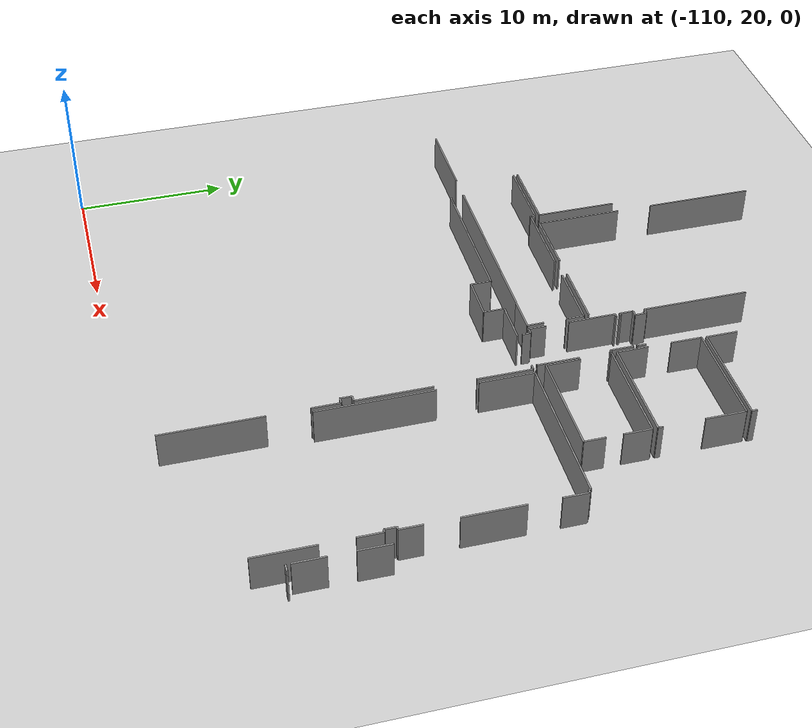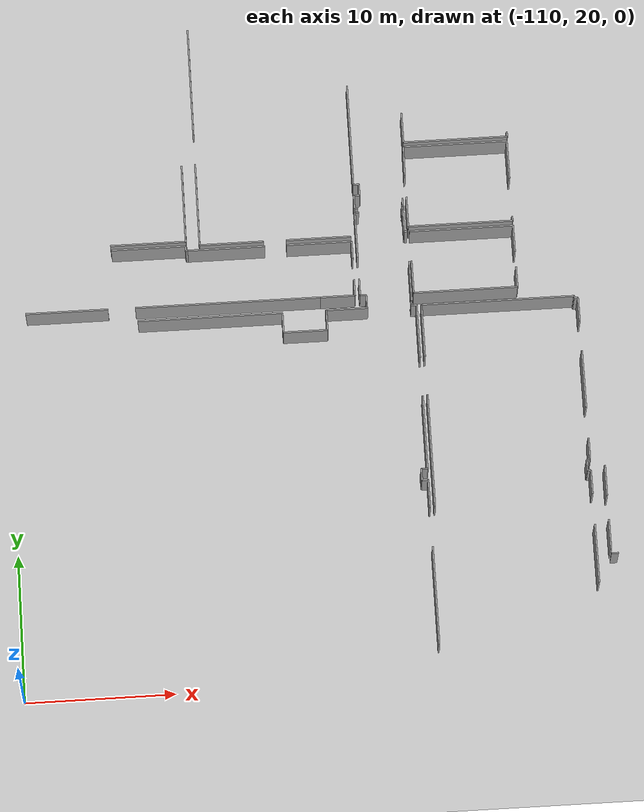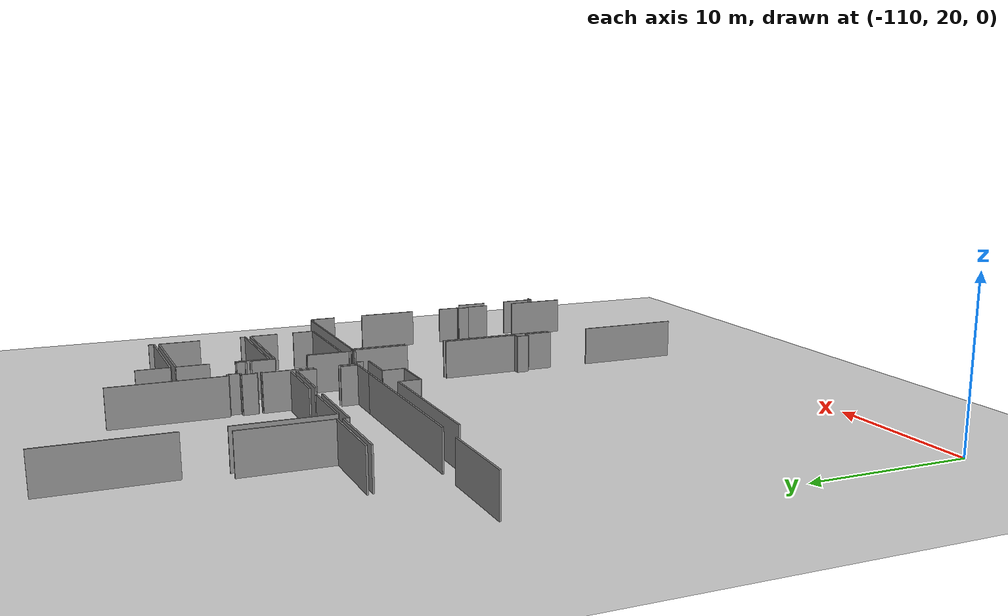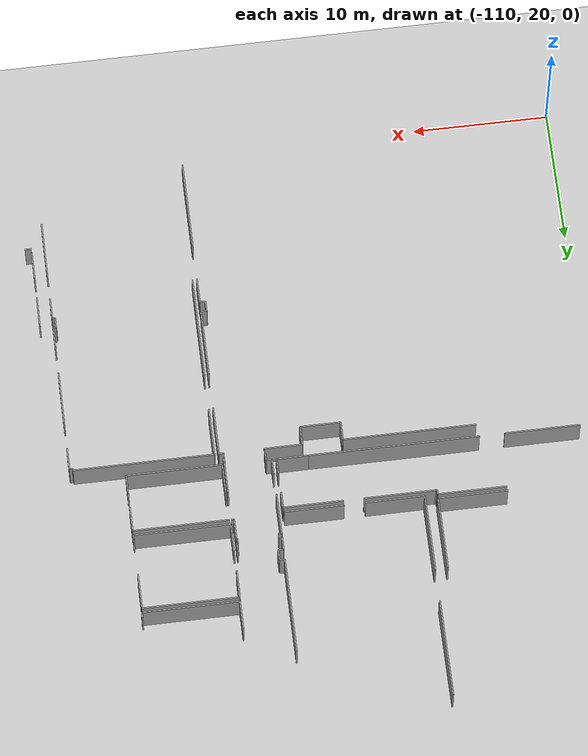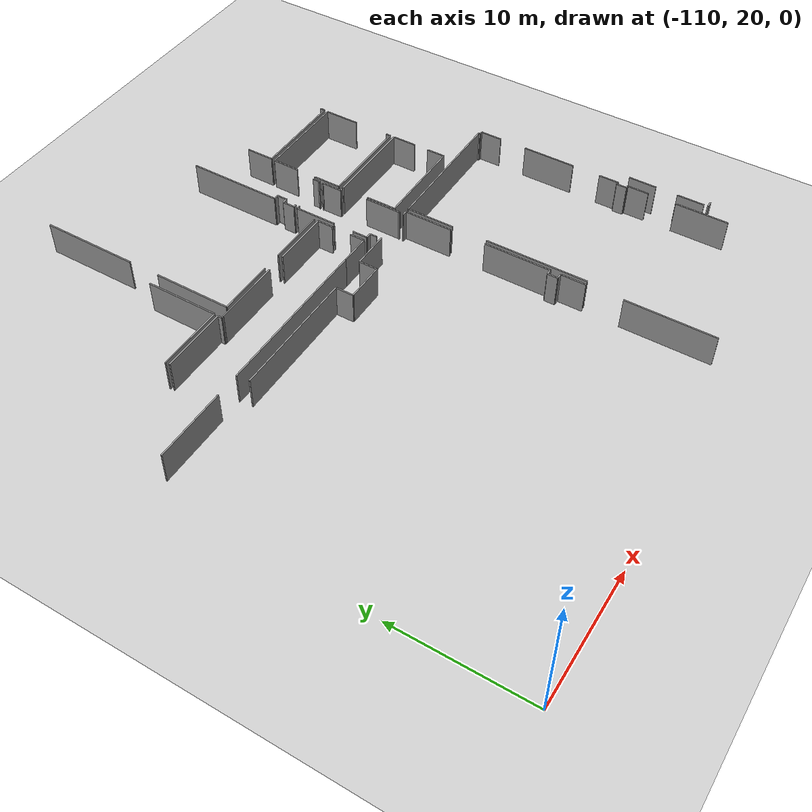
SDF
<sdf version="1.6">
 <world name="default">
  <model name="ground_plane">
   <static>1</static>
   <link name="link">
    <collision name="collision">
     <geometry><plane><normal>0 0 1</normal><size>100 100</size></plane></geometry>
     <surface><friction><ode><mu>100</mu><mu2>50</mu2></ode></friction></surface>
    </collision>
    <visual name="visual">
     <cast_shadows>0</cast_shadows>
     <geometry><plane><normal>0 0 1</normal><size>100 100</size></plane></geometry>
     <material>
      <script><uri>file://media/materials/scripts/gazebo.material</uri><name>Gazebo/Grey</name></script>
     </material>
    </visual>
   </link>
  </model>
  <model name="0510045926_A-40">
   <static>1</static>
   <link name="Wall_679">
    <collision name="Wall_679_Collision">
     <geometry><box><size>5.3736760945 0.1 2.5</size></box></geometry>
     <pose>2.68683804725 0 1.25 0 0 0</pose>
    </collision>
    <visual name="Wall_679_Visual">
     <pose>2.68683804725 0 1.25 0 0 0</pose>
     <geometry><box><size>5.3736760945 0.1 2.5</size></box></geometry>
     <material>
      <script><uri>file://media/materials/scripts/gazebo.material</uri><name>Gazebo/Grey</name></script>
      <ambient>1 1 1 1</ambient>
     </material>
    </visual>
    <pose>36.2260142274 -45.2300565416 0 0 0 -1.57079632679</pose>
   </link>
   <link name="Wall_680">
    <collision name="Wall_680_Collision">
     <geometry><box><size>5.06805937189 0.1 2.5</size></box></geometry>
     <pose>2.53402968594 0 1.25 0 0 0</pose>
    </collision>
    <visual name="Wall_680_Visual">
     <pose>2.53402968594 0 1.25 0 0 0</pose>
     <geometry><box><size>5.06805937189 0.1 2.5</size></box></geometry>
     <material>
      <script><uri>file://media/materials/scripts/gazebo.material</uri><name>Gazebo/Grey</name></script>
      <ambient>1 1 1 1</ambient>
     </material>
    </visual>
    <pose>36.2260142274 -50.6037326361 0 0 0 3.14159265359</pose>
   </link>
   <link name="Wall_689">
    <collision name="Wall_689_Collision">
     <geometry><box><size>5.73209039046 0.1 2.5</size></box></geometry>
     <pose>2.86604519523 0 1.25 0 0 0</pose>
    </collision>
    <visual name="Wall_689_Visual">
     <pose>2.86604519523 0 1.25 0 0 0</pose>
     <geometry><box><size>5.73209039046 0.1 2.5</size></box></geometry>
     <material>
      <script><uri>file://media/materials/scripts/gazebo.material</uri><name>Gazebo/Grey</name></script>
      <ambient>1 1 1 1</ambient>
     </material>
    </visual>
    <pose>37.1433720642 -50.9024958276 0 0 0 1.57079632679</pose>
   </link>
   <link name="Wall_690">
    <collision name="Wall_690_Collision">
     <geometry><box><size>7.20103056802 0.1 2.5</size></box></geometry>
     <pose>3.60051528401 0 1.25 0 0 0</pose>
    </collision>
    <visual name="Wall_690_Visual">
     <pose>3.60051528401 0 1.25 0 0 0</pose>
     <geometry><box><size>7.20103056802 0.1 2.5</size></box></geometry>
     <material>
      <script><uri>file://media/materials/scripts/gazebo.material</uri><name>Gazebo/Grey</name></script>
      <ambient>1 1 1 1</ambient>
     </material>
    </visual>
    <pose>37.1433720642 -42.7724310363 0 0 0 1.57079632679</pose>
   </link>
   <link name="Wall_696">
    <collision name="Wall_696_Collision">
     <geometry><box><size>4.36696851818 0.1 2.5</size></box></geometry>
     <pose>2.18348425909 0 1.25 0 0 0</pose>
    </collision>
    <visual name="Wall_696_Visual">
     <pose>2.18348425909 0 1.25 0 0 0</pose>
     <geometry><box><size>4.36696851818 0.1 2.5</size></box></geometry>
     <material>
      <script><uri>file://media/materials/scripts/gazebo.material</uri><name>Gazebo/Grey</name></script>
      <ambient>1 1 1 1</ambient>
     </material>
    </visual>
    <pose>47.3259425192 -50.8933577861 0 0 0 3.14159265359</pose>
   </link>
   <link name="Wall_697">
    <collision name="Wall_697_Collision">
     <geometry><box><size>4.30047359121 0.1 2.5</size></box></geometry>
     <pose>2.15023679561 0 1.25 0 0 0</pose>
    </collision>
    <visual name="Wall_697_Visual">
     <pose>2.15023679561 0 1.25 0 0 0</pose>
     <geometry><box><size>4.30047359121 0.1 2.5</size></box></geometry>
     <material>
      <script><uri>file://media/materials/scripts/gazebo.material</uri><name>Gazebo/Grey</name></script>
      <ambient>1 1 1 1</ambient>
     </material>
    </visual>
    <pose>41.4438359468 -50.8933577861 0 0 0 -3.13946776008</pose>
   </link>
   <link name="Wall_715">
    <collision name="Wall_715_Collision">
     <geometry><box><size>9.69343139806 0.1 2.5</size></box></geometry>
     <pose>4.84671569903 0 1.25 0 0 0</pose>
    </collision>
    <visual name="Wall_715_Visual">
     <pose>4.84671569903 0 1.25 0 0 0</pose>
     <geometry><box><size>9.69343139806 0.1 2.5</size></box></geometry>
     <material>
      <script><uri>file://media/materials/scripts/gazebo.material</uri><name>Gazebo/Grey</name></script>
      <ambient>1 1 1 1</ambient>
     </material>
    </visual>
    <pose>32.7324901798 -55.9758857237 0 0 0 0.0</pose>
   </link>
   <link name="Wall_716">
    <collision name="Wall_716_Collision">
     <geometry><box><size>1.36461420331 0.1 2.5</size></box></geometry>
     <pose>0.682307101654 0 1.25 0 0 0</pose>
    </collision>
    <visual name="Wall_716_Visual">
     <pose>0.682307101654 0 1.25 0 0 0</pose>
     <geometry><box><size>1.36461420331 0.1 2.5</size></box></geometry>
     <material>
      <script><uri>file://media/materials/scripts/gazebo.material</uri><name>Gazebo/Grey</name></script>
      <ambient>1 1 1 1</ambient>
     </material>
    </visual>
    <pose>42.4259215778 -55.9758857237 0 0 0 -1.57079632679</pose>
   </link>
   <link name="Wall_717">
    <collision name="Wall_717_Collision">
     <geometry><box><size>2.94244937588 0.1 2.5</size></box></geometry>
     <pose>1.47122468794 0 1.25 0 0 0</pose>
    </collision>
    <visual name="Wall_717_Visual">
     <pose>1.47122468794 0 1.25 0 0 0</pose>
     <geometry><box><size>2.94244937588 0.1 2.5</size></box></geometry>
     <material>
      <script><uri>file://media/materials/scripts/gazebo.material</uri><name>Gazebo/Grey</name></script>
      <ambient>1 1 1 1</ambient>
     </material>
    </visual>
    <pose>42.4259215778 -57.340499927 0 0 0 0.0</pose>
   </link>
   <link name="Wall_718">
    <collision name="Wall_718_Collision">
     <geometry><box><size>1.38974381754 0.1 2.5</size></box></geometry>
     <pose>0.694871908772 0 1.25 0 0 0</pose>
    </collision>
    <visual name="Wall_718_Visual">
     <pose>0.694871908772 0 1.25 0 0 0</pose>
     <geometry><box><size>1.38974381754 0.1 2.5</size></box></geometry>
     <material>
      <script><uri>file://media/materials/scripts/gazebo.material</uri><name>Gazebo/Grey</name></script>
      <ambient>1 1 1 1</ambient>
     </material>
    </visual>
    <pose>45.3683709537 -57.340499927 0 0 0 1.57079632679</pose>
   </link>
   <link name="Wall_719">
    <collision name="Wall_719_Collision">
     <geometry><box><size>2.79573304227 0.1 2.5</size></box></geometry>
     <pose>1.39786652113 0 1.25 0 0 0</pose>
    </collision>
    <visual name="Wall_719_Visual">
     <pose>1.39786652113 0 1.25 0 0 0</pose>
     <geometry><box><size>2.79573304227 0.1 2.5</size></box></geometry>
     <material>
      <script><uri>file://media/materials/scripts/gazebo.material</uri><name>Gazebo/Grey</name></script>
      <ambient>1 1 1 1</ambient>
     </material>
    </visual>
    <pose>45.3683709537 -55.9507561095 0 0 0 0.0</pose>
   </link>
   <link name="Wall_720">
    <collision name="Wall_720_Collision">
     <geometry><box><size>0.377198048013 0.1 2.5</size></box></geometry>
     <pose>0.188599024006 0 1.25 0 0 0</pose>
    </collision>
    <visual name="Wall_720_Visual">
     <pose>0.188599024006 0 1.25 0 0 0</pose>
     <geometry><box><size>0.377198048013 0.1 2.5</size></box></geometry>
     <material>
      <script><uri>file://media/materials/scripts/gazebo.material</uri><name>Gazebo/Grey</name></script>
      <ambient>1 1 1 1</ambient>
     </material>
    </visual>
    <pose>51.0504559502 -55.9507561095 0 0 0 0.0</pose>
   </link>
   <link name="Wall_721">
    <collision name="Wall_721_Collision">
     <geometry><box><size>3.64201722267 0.1 2.5</size></box></geometry>
     <pose>1.82100861133 0 1.25 0 0 0</pose>
    </collision>
    <visual name="Wall_721_Visual">
     <pose>1.82100861133 0 1.25 0 0 0</pose>
     <geometry><box><size>3.64201722267 0.1 2.5</size></box></geometry>
     <material>
      <script><uri>file://media/materials/scripts/gazebo.material</uri><name>Gazebo/Grey</name></script>
      <ambient>1 1 1 1</ambient>
     </material>
    </visual>
    <pose>51.4276539982 -55.9507561095 0 0 0 -1.57079632679</pose>
   </link>
   <link name="Wall_722">
    <collision name="Wall_722_Collision">
     <geometry><box><size>5.02617668149 0.1 2.5</size></box></geometry>
     <pose>2.51308834075 0 1.25 0 0 0</pose>
    </collision>
    <visual name="Wall_722_Visual">
     <pose>2.51308834075 0 1.25 0 0 0</pose>
     <geometry><box><size>5.02617668149 0.1 2.5</size></box></geometry>
     <material>
      <script><uri>file://media/materials/scripts/gazebo.material</uri><name>Gazebo/Grey</name></script>
      <ambient>1 1 1 1</ambient>
     </material>
    </visual>
    <pose>51.4276539982 -62.2897647589 0 0 0 -1.57079632679</pose>
   </link>
   <link name="Wall_723">
    <collision name="Wall_723_Collision">
     <geometry><box><size>0.419588407379 0.1 2.5</size></box></geometry>
     <pose>0.209794203689 0 1.25 0 0 0</pose>
    </collision>
    <visual name="Wall_723_Visual">
     <pose>0.209794203689 0 1.25 0 0 0</pose>
     <geometry><box><size>0.419588407379 0.1 2.5</size></box></geometry>
     <material>
      <script><uri>file://media/materials/scripts/gazebo.material</uri><name>Gazebo/Grey</name></script>
      <ambient>1 1 1 1</ambient>
     </material>
    </visual>
    <pose>51.4276539982 -67.3159414404 0 0 0 3.14159265359</pose>
   </link>
   <link name="Wall_724">
    <collision name="Wall_724_Collision">
     <geometry><box><size>0.769118496284 0.1 2.5</size></box></geometry>
     <pose>0.384559248142 0 1.25 0 0 0</pose>
    </collision>
    <visual name="Wall_724_Visual">
     <pose>0.384559248142 0 1.25 0 0 0</pose>
     <geometry><box><size>0.769118496284 0.1 2.5</size></box></geometry>
     <material>
      <script><uri>file://media/materials/scripts/gazebo.material</uri><name>Gazebo/Grey</name></script>
      <ambient>1 1 1 1</ambient>
     </material>
    </visual>
    <pose>51.0080655908 -67.3159414404 0 0 0 -1.57079632679</pose>
   </link>
   <link name="Wall_725">
    <collision name="Wall_725_Collision">
     <geometry><box><size>0.414765552122 0.1 2.5</size></box></geometry>
     <pose>0.207382776061 0 1.25 0 0 0</pose>
    </collision>
    <visual name="Wall_725_Visual">
     <pose>0.207382776061 0 1.25 0 0 0</pose>
     <geometry><box><size>0.414765552122 0.1 2.5</size></box></geometry>
     <material>
      <script><uri>file://media/materials/scripts/gazebo.material</uri><name>Gazebo/Grey</name></script>
      <ambient>1 1 1 1</ambient>
     </material>
    </visual>
    <pose>51.0080655908 -68.0850599367 0 0 0 0.0</pose>
   </link>
   <link name="Wall_726">
    <collision name="Wall_726_Collision">
     <geometry><box><size>1.88421339865 0.1 2.5</size></box></geometry>
     <pose>0.942106699327 0 1.25 0 0 0</pose>
    </collision>
    <visual name="Wall_726_Visual">
     <pose>0.942106699327 0 1.25 0 0 0</pose>
     <geometry><box><size>1.88421339865 0.1 2.5</size></box></geometry>
     <material>
      <script><uri>file://media/materials/scripts/gazebo.material</uri><name>Gazebo/Grey</name></script>
      <ambient>1 1 1 1</ambient>
     </material>
    </visual>
    <pose>51.422831143 -68.0850599367 0 0 0 -1.57079632679</pose>
   </link>
   <link name="Wall_727">
    <collision name="Wall_727_Collision">
     <geometry><box><size>6.62660312343 0.1 2.5</size></box></geometry>
     <pose>3.31330156172 0 1.25 0 0 0</pose>
    </collision>
    <visual name="Wall_727_Visual">
     <pose>3.31330156172 0 1.25 0 0 0</pose>
     <geometry><box><size>6.62660312343 0.1 2.5</size></box></geometry>
     <material>
      <script><uri>file://media/materials/scripts/gazebo.material</uri><name>Gazebo/Grey</name></script>
      <ambient>1 1 1 1</ambient>
     </material>
    </visual>
    <pose>51.422831143 -72.6896175349 0 0 0 -1.57079632679</pose>
   </link>
   <link name="Wall_737">
    <collision name="Wall_737_Collision">
     <geometry><box><size>5.18558473947 0.1 2.5</size></box></geometry>
     <pose>2.59279236974 0 1.25 0 0 0</pose>
    </collision>
    <visual name="Wall_737_Visual">
     <pose>2.59279236974 0 1.25 0 0 0</pose>
     <geometry><box><size>5.18558473947 0.1 2.5</size></box></geometry>
     <material>
      <script><uri>file://media/materials/scripts/gazebo.material</uri><name>Gazebo/Grey</name></script>
      <ambient>1 1 1 1</ambient>
     </material>
    </visual>
    <pose>36.333132381 -51.2322268265 0 0 0 0.0</pose>
   </link>
   <link name="Wall_738">
    <collision name="Wall_738_Collision">
     <geometry><box><size>4.35884581459 0.1 2.5</size></box></geometry>
     <pose>2.17942290729 0 1.25 0 0 0</pose>
    </collision>
    <visual name="Wall_738_Visual">
     <pose>2.17942290729 0 1.25 0 0 0</pose>
     <geometry><box><size>4.35884581459 0.1 2.5</size></box></geometry>
     <material>
      <script><uri>file://media/materials/scripts/gazebo.material</uri><name>Gazebo/Grey</name></script>
      <ambient>1 1 1 1</ambient>
     </material>
    </visual>
    <pose>42.9884188015 -51.2322268265 0 0 0 0.0</pose>
   </link>
   <link name="Wall_739">
    <collision name="Wall_739_Collision">
     <geometry><box><size>1.19860644867 0.1 2.5</size></box></geometry>
     <pose>0.599303224333 0 1.25 0 0 0</pose>
    </collision>
    <visual name="Wall_739_Visual">
     <pose>0.599303224333 0 1.25 0 0 0</pose>
     <geometry><box><size>1.19860644867 0.1 2.5</size></box></geometry>
     <material>
      <script><uri>file://media/materials/scripts/gazebo.material</uri><name>Gazebo/Grey</name></script>
      <ambient>1 1 1 1</ambient>
     </material>
    </visual>
    <pose>47.3472646161 -51.2322268265 0 0 0 -1.57079632679</pose>
   </link>
   <link name="Wall_740">
    <collision name="Wall_740_Collision">
     <geometry><box><size>1.10747986775 0.1 2.5</size></box></geometry>
     <pose>0.553739933876 0 1.25 0 0 0</pose>
    </collision>
    <visual name="Wall_740_Visual">
     <pose>0.553739933876 0 1.25 0 0 0</pose>
     <geometry><box><size>1.10747986775 0.1 2.5</size></box></geometry>
     <material>
      <script><uri>file://media/materials/scripts/gazebo.material</uri><name>Gazebo/Grey</name></script>
      <ambient>1 1 1 1</ambient>
     </material>
    </visual>
    <pose>47.3472646161 -53.9322642671 0 0 0 -1.57079632679</pose>
   </link>
   <link name="Wall_741">
    <collision name="Wall_741_Collision">
     <geometry><box><size>2.32969292373 0.1 2.5</size></box></geometry>
     <pose>1.16484646186 0 1.25 0 0 0</pose>
    </collision>
    <visual name="Wall_741_Visual">
     <pose>1.16484646186 0 1.25 0 0 0</pose>
     <geometry><box><size>2.32969292373 0.1 2.5</size></box></geometry>
     <material>
      <script><uri>file://media/materials/scripts/gazebo.material</uri><name>Gazebo/Grey</name></script>
      <ambient>1 1 1 1</ambient>
     </material>
    </visual>
    <pose>47.3472646161 -55.0397441348 0 0 0 3.14159265359</pose>
   </link>
   <link name="Wall_742">
    <collision name="Wall_742_Collision">
     <geometry><box><size>12.4051452251 0.1 2.5</size></box></geometry>
     <pose>6.20257261253 0 1.25 0 0 0</pose>
    </collision>
    <visual name="Wall_742_Visual">
     <pose>6.20257261253 0 1.25 0 0 0</pose>
     <geometry><box><size>12.4051452251 0.1 2.5</size></box></geometry>
     <material>
      <script><uri>file://media/materials/scripts/gazebo.material</uri><name>Gazebo/Grey</name></script>
      <ambient>1 1 1 1</ambient>
     </material>
    </visual>
    <pose>45.0175716924 -55.0397441348 0 0 0 3.14159265359</pose>
   </link>
   <link name="Wall_743">
    <collision name="Wall_743_Collision">
     <geometry><box><size>5.51810791773 0.1 2.5</size></box></geometry>
     <pose>2.75905395887 0 1.25 0 0 0</pose>
    </collision>
    <visual name="Wall_743_Visual">
     <pose>2.75905395887 0 1.25 0 0 0</pose>
     <geometry><box><size>5.51810791773 0.1 2.5</size></box></geometry>
     <material>
      <script><uri>file://media/materials/scripts/gazebo.material</uri><name>Gazebo/Grey</name></script>
      <ambient>1 1 1 1</ambient>
     </material>
    </visual>
    <pose>30.7825336489 -55.0397441348 0 0 0 3.14159265359</pose>
   </link>
   <link name="Wall_761">
    <collision name="Wall_761_Collision">
     <geometry><box><size>4.99597037752 0.1 2.5</size></box></geometry>
     <pose>2.49798518876 0 1.25 0 0 0</pose>
    </collision>
    <visual name="Wall_761_Visual">
     <pose>2.49798518876 0 1.25 0 0 0</pose>
     <geometry><box><size>4.99597037752 0.1 2.5</size></box></geometry>
     <material>
      <script><uri>file://media/materials/scripts/gazebo.material</uri><name>Gazebo/Grey</name></script>
      <ambient>1 1 1 1</ambient>
     </material>
    </visual>
    <pose>31.2023758908 -50.9096031932 0 0 0 0.0</pose>
   </link>
   <link name="Wall_762">
    <collision name="Wall_762_Collision">
     <geometry><box><size>0.32262363326 0.1 2.5</size></box></geometry>
     <pose>0.16131181663 0 1.25 0 0 0</pose>
    </collision>
    <visual name="Wall_762_Visual">
     <pose>0.16131181663 0 1.25 0 0 0</pose>
     <geometry><box><size>0.32262363326 0.1 2.5</size></box></geometry>
     <material>
      <script><uri>file://media/materials/scripts/gazebo.material</uri><name>Gazebo/Grey</name></script>
      <ambient>1 1 1 1</ambient>
     </material>
    </visual>
    <pose>36.1983462683 -50.9096031932 0 0 0 -1.57079632679</pose>
   </link>
   <link name="Wall_763">
    <collision name="Wall_763_Collision">
     <geometry><box><size>0.134786112715 0.1 2.5</size></box></geometry>
     <pose>0.0673930563576 0 1.25 0 0 0</pose>
    </collision>
    <visual name="Wall_763_Visual">
     <pose>0.0673930563576 0 1.25 0 0 0</pose>
     <geometry><box><size>0.134786112715 0.1 2.5</size></box></geometry>
     <material>
      <script><uri>file://media/materials/scripts/gazebo.material</uri><name>Gazebo/Grey</name></script>
      <ambient>1 1 1 1</ambient>
     </material>
    </visual>
    <pose>36.1983462683 -51.2322268265 0 0 0 0.0</pose>
   </link>
   <link name="Wall_808">
    <collision name="Wall_808_Collision">
     <geometry><box><size>1.14047835109 0.1 2.5</size></box></geometry>
     <pose>0.570239175546 0 1.25 0 0 0</pose>
    </collision>
    <visual name="Wall_808_Visual">
     <pose>0.570239175546 0 1.25 0 0 0</pose>
     <geometry><box><size>1.14047835109 0.1 2.5</size></box></geometry>
     <material>
      <script><uri>file://media/materials/scripts/gazebo.material</uri><name>Gazebo/Grey</name></script>
      <ambient>1 1 1 1</ambient>
     </material>
    </visual>
    <pose>47.6909565118 -55.0453284936 0 0 0 1.57079632679</pose>
   </link>
   <link name="Wall_809">
    <collision name="Wall_809_Collision">
     <geometry><box><size>3.13257140681 0.1 2.5</size></box></geometry>
     <pose>1.56628570341 0 1.25 0 0 0</pose>
    </collision>
    <visual name="Wall_809_Visual">
     <pose>1.56628570341 0 1.25 0 0 0</pose>
     <geometry><box><size>3.13257140681 0.1 2.5</size></box></geometry>
     <material>
      <script><uri>file://media/materials/scripts/gazebo.material</uri><name>Gazebo/Grey</name></script>
      <ambient>1 1 1 1</ambient>
     </material>
    </visual>
    <pose>47.6909565118 -52.3633133016 0 0 0 1.57079632679</pose>
   </link>
   <link name="Wall_810">
    <collision name="Wall_810_Collision">
     <geometry><box><size>0.268556887482 0.1 2.5</size></box></geometry>
     <pose>0.134278443741 0 1.25 0 0 0</pose>
    </collision>
    <visual name="Wall_810_Visual">
     <pose>0.134278443741 0 1.25 0 0 0</pose>
     <geometry><box><size>0.268556887482 0.1 2.5</size></box></geometry>
     <material>
      <script><uri>file://media/materials/scripts/gazebo.material</uri><name>Gazebo/Grey</name></script>
      <ambient>1 1 1 1</ambient>
     </material>
    </visual>
    <pose>47.6909565118 -49.2307418947 0 0 0 0.0</pose>
   </link>
   <link name="Wall_811">
    <collision name="Wall_811_Collision">
     <geometry><box><size>0.107118153608 0.1 2.5</size></box></geometry>
     <pose>0.053559076804 0 1.25 0 0 0</pose>
    </collision>
    <visual name="Wall_811_Visual">
     <pose>0.053559076804 0 1.25 0 0 0</pose>
     <geometry><box><size>0.107118153608 0.1 2.5</size></box></geometry>
     <material>
      <script><uri>file://media/materials/scripts/gazebo.material</uri><name>Gazebo/Grey</name></script>
      <ambient>1 1 1 1</ambient>
     </material>
    </visual>
    <pose>50.835711974 -49.2307418947 0 0 0 0.0</pose>
   </link>
   <link name="Wall_812">
    <collision name="Wall_812_Collision">
     <geometry><box><size>1.51996090949 0.1 2.5</size></box></geometry>
     <pose>0.759980454744 0 1.25 0 0 0</pose>
    </collision>
    <visual name="Wall_812_Visual">
     <pose>0.759980454744 0 1.25 0 0 0</pose>
     <geometry><box><size>1.51996090949 0.1 2.5</size></box></geometry>
     <material>
      <script><uri>file://media/materials/scripts/gazebo.material</uri><name>Gazebo/Grey</name></script>
      <ambient>1 1 1 1</ambient>
     </material>
    </visual>
    <pose>50.9428301276 -49.2307418947 0 0 0 -1.57079632679</pose>
   </link>
   <link name="Wall_813">
    <collision name="Wall_813_Collision">
     <geometry><box><size>0.187076017083 0.1 2.5</size></box></geometry>
     <pose>0.0935380085415 0 1.25 0 0 0</pose>
    </collision>
    <visual name="Wall_813_Visual">
     <pose>0.0935380085415 0 1.25 0 0 0</pose>
     <geometry><box><size>0.187076017083 0.1 2.5</size></box></geometry>
     <material>
      <script><uri>file://media/materials/scripts/gazebo.material</uri><name>Gazebo/Grey</name></script>
      <ambient>1 1 1 1</ambient>
     </material>
    </visual>
    <pose>50.9428301276 -50.7507028042 0 0 0 0.0</pose>
   </link>
   <link name="Wall_814">
    <collision name="Wall_814_Collision">
     <geometry><box><size>2.75410418637 0.1 2.5</size></box></geometry>
     <pose>1.37705209318 0 1.25 0 0 0</pose>
    </collision>
    <visual name="Wall_814_Visual">
     <pose>1.37705209318 0 1.25 0 0 0</pose>
     <geometry><box><size>2.75410418637 0.1 2.5</size></box></geometry>
     <material>
      <script><uri>file://media/materials/scripts/gazebo.material</uri><name>Gazebo/Grey</name></script>
      <ambient>1 1 1 1</ambient>
     </material>
    </visual>
    <pose>51.1299061447 -52.8476295032 0 0 0 -1.57079632679</pose>
   </link>
   <link name="Wall_815">
    <collision name="Wall_815_Collision">
     <geometry><box><size>0.0890959050151 0.1 2.5</size></box></geometry>
     <pose>0.0445479525076 0 1.25 0 0 0</pose>
    </collision>
    <visual name="Wall_815_Visual">
     <pose>0.0445479525076 0 1.25 0 0 0</pose>
     <geometry><box><size>0.0890959050151 0.1 2.5</size></box></geometry>
     <material>
      <script><uri>file://media/materials/scripts/gazebo.material</uri><name>Gazebo/Grey</name></script>
      <ambient>1 1 1 1</ambient>
     </material>
    </visual>
    <pose>51.1299061447 -55.6017336895 0 0 0 3.14159265359</pose>
   </link>
   <link name="Wall_816">
    <collision name="Wall_816_Collision">
     <geometry><box><size>0.548028657914 0.1 2.5</size></box></geometry>
     <pose>0.274014328957 0 1.25 0 0 0</pose>
    </collision>
    <visual name="Wall_816_Visual">
     <pose>0.274014328957 0 1.25 0 0 0</pose>
     <geometry><box><size>0.548028657914 0.1 2.5</size></box></geometry>
     <material>
      <script><uri>file://media/materials/scripts/gazebo.material</uri><name>Gazebo/Grey</name></script>
      <ambient>1 1 1 1</ambient>
     </material>
    </visual>
    <pose>48.1077527398 -55.6017336895 0 0 0 1.57079632679</pose>
   </link>
   <link name="Wall_817">
    <collision name="Wall_817_Collision">
     <geometry><box><size>0.416880393016 0.1 2.5</size></box></geometry>
     <pose>0.208440196508 0 1.25 0 0 0</pose>
    </collision>
    <visual name="Wall_817_Visual">
     <pose>0.208440196508 0 1.25 0 0 0</pose>
     <geometry><box><size>0.416880393016 0.1 2.5</size></box></geometry>
     <material>
      <script><uri>file://media/materials/scripts/gazebo.material</uri><name>Gazebo/Grey</name></script>
      <ambient>1 1 1 1</ambient>
     </material>
    </visual>
    <pose>48.1077527398 -55.0537050316 0 0 0 3.12149791662</pose>
   </link>
   <link name="Wall_818">
    <collision name="Wall_818_Collision">
     <geometry><box><size>2.25481175 0.1 2.5</size></box></geometry>
     <pose>1.127405875 0 1.25 0 0 0</pose>
    </collision>
    <visual name="Wall_818_Visual">
     <pose>1.127405875 0 1.25 0 0 0</pose>
     <geometry><box><size>2.25481175 0.1 2.5</size></box></geometry>
     <material>
      <script><uri>file://media/materials/scripts/gazebo.material</uri><name>Gazebo/Grey</name></script>
      <ambient>1 1 1 1</ambient>
     </material>
    </visual>
    <pose>51.2783993197 -55.0864496805 0 0 0 1.57079632679</pose>
   </link>
   <link name="Wall_819">
    <collision name="Wall_819_Collision">
     <geometry><box><size>6.97308719849 0.1 2.5</size></box></geometry>
     <pose>3.48654359925 0 1.25 0 0 0</pose>
    </collision>
    <visual name="Wall_819_Visual">
     <pose>3.48654359925 0 1.25 0 0 0</pose>
     <geometry><box><size>6.97308719849 0.1 2.5</size></box></geometry>
     <material>
      <script><uri>file://media/materials/scripts/gazebo.material</uri><name>Gazebo/Grey</name></script>
      <ambient>1 1 1 1</ambient>
     </material>
    </visual>
    <pose>51.2783993197 -50.7555256595 0 0 0 0.0</pose>
   </link>
   <link name="Wall_820">
    <collision name="Wall_820_Collision">
     <geometry><box><size>1.82506996313 0.1 2.5</size></box></geometry>
     <pose>0.912534981565 0 1.25 0 0 0</pose>
    </collision>
    <visual name="Wall_820_Visual">
     <pose>0.912534981565 0 1.25 0 0 0</pose>
     <geometry><box><size>1.82506996313 0.1 2.5</size></box></geometry>
     <material>
      <script><uri>file://media/materials/scripts/gazebo.material</uri><name>Gazebo/Grey</name></script>
      <ambient>1 1 1 1</ambient>
     </material>
    </visual>
    <pose>58.2514865182 -50.7555256595 0 0 0 -1.57079632679</pose>
   </link>
   <link name="Wall_821">
    <collision name="Wall_821_Collision">
     <geometry><box><size>1.39329750036 0.1 2.5</size></box></geometry>
     <pose>0.696648750182 0 1.25 0 0 0</pose>
    </collision>
    <visual name="Wall_821_Visual">
     <pose>0.696648750182 0 1.25 0 0 0</pose>
     <geometry><box><size>1.39329750036 0.1 2.5</size></box></geometry>
     <material>
      <script><uri>file://media/materials/scripts/gazebo.material</uri><name>Gazebo/Grey</name></script>
      <ambient>1 1 1 1</ambient>
     </material>
    </visual>
    <pose>58.2514865182 -53.6766529385 0 0 0 -1.57079632679</pose>
   </link>
   <link name="Wall_822">
    <collision name="Wall_822_Collision">
     <geometry><box><size>6.97310671815 0.1 2.5</size></box></geometry>
     <pose>3.48655335908 0 1.25 0 0 0</pose>
    </collision>
    <visual name="Wall_822_Visual">
     <pose>3.48655335908 0 1.25 0 0 0</pose>
     <geometry><box><size>6.97310671815 0.1 2.5</size></box></geometry>
     <material>
      <script><uri>file://media/materials/scripts/gazebo.material</uri><name>Gazebo/Grey</name></script>
      <ambient>1 1 1 1</ambient>
     </material>
    </visual>
    <pose>58.2514865182 -55.0699504388 0 0 0 -3.13922652645</pose>
   </link>
   <link name="Wall_823">
    <collision name="Wall_823_Collision">
     <geometry><box><size>7.00202433004 0.1 2.5</size></box></geometry>
     <pose>3.50101216502 0 1.25 0 0 0</pose>
    </collision>
    <visual name="Wall_823_Visual">
     <pose>3.50101216502 0 1.25 0 0 0</pose>
     <geometry><box><size>7.00202433004 0.1 2.5</size></box></geometry>
     <material>
      <script><uri>file://media/materials/scripts/gazebo.material</uri><name>Gazebo/Grey</name></script>
      <ambient>1 1 1 1</ambient>
     </material>
    </visual>
    <pose>51.2380396363 -44.7581782299 0 0 0 0.0</pose>
   </link>
   <link name="Wall_824">
    <collision name="Wall_824_Collision">
     <geometry><box><size>2.62870994968 0.1 2.5</size></box></geometry>
     <pose>1.31435497484 0 1.25 0 0 0</pose>
    </collision>
    <visual name="Wall_824_Visual">
     <pose>1.31435497484 0 1.25 0 0 0</pose>
     <geometry><box><size>2.62870994968 0.1 2.5</size></box></geometry>
     <material>
      <script><uri>file://media/materials/scripts/gazebo.material</uri><name>Gazebo/Grey</name></script>
      <ambient>1 1 1 1</ambient>
     </material>
    </visual>
    <pose>58.2400639663 -44.7581782299 0 0 0 -1.57079632679</pose>
   </link>
   <link name="Wall_825">
    <collision name="Wall_825_Collision">
     <geometry><box><size>0.3317616748 0.1 2.5</size></box></geometry>
     <pose>0.1658808374 0 1.25 0 0 0</pose>
    </collision>
    <visual name="Wall_825_Visual">
     <pose>0.1658808374 0 1.25 0 0 0</pose>
     <geometry><box><size>0.3317616748 0.1 2.5</size></box></geometry>
     <material>
      <script><uri>file://media/materials/scripts/gazebo.material</uri><name>Gazebo/Grey</name></script>
      <ambient>1 1 1 1</ambient>
     </material>
    </visual>
    <pose>58.2400639663 -50.0828642684 0 0 0 -1.57079632679</pose>
   </link>
   <link name="Wall_826">
    <collision name="Wall_826_Collision">
     <geometry><box><size>7.02080808209 0.1 2.5</size></box></geometry>
     <pose>3.51040404105 0 1.25 0 0 0</pose>
    </collision>
    <visual name="Wall_826_Visual">
     <pose>3.51040404105 0 1.25 0 0 0</pose>
     <geometry><box><size>7.02080808209 0.1 2.5</size></box></geometry>
     <material>
      <script><uri>file://media/materials/scripts/gazebo.material</uri><name>Gazebo/Grey</name></script>
      <ambient>1 1 1 1</ambient>
     </material>
    </visual>
    <pose>58.2400639663 -50.4146259432 0 0 0 3.14159265359</pose>
   </link>
   <link name="Wall_827">
    <collision name="Wall_827_Collision">
     <geometry><box><size>2.0819504642 0.1 2.5</size></box></geometry>
     <pose>1.0409752321 0 1.25 0 0 0</pose>
    </collision>
    <visual name="Wall_827_Visual">
     <pose>1.0409752321 0 1.25 0 0 0</pose>
     <geometry><box><size>2.0819504642 0.1 2.5</size></box></geometry>
     <material>
      <script><uri>file://media/materials/scripts/gazebo.material</uri><name>Gazebo/Grey</name></script>
      <ambient>1 1 1 1</ambient>
     </material>
    </visual>
    <pose>51.2192558842 -50.4146259432 0 0 0 1.57079632679</pose>
   </link>
   <link name="Wall_828">
    <collision name="Wall_828_Collision">
     <geometry><box><size>2.03203188895 0.1 2.5</size></box></geometry>
     <pose>1.01601594448 0 1.25 0 0 0</pose>
    </collision>
    <visual name="Wall_828_Visual">
     <pose>1.01601594448 0 1.25 0 0 0</pose>
     <geometry><box><size>2.03203188895 0.1 2.5</size></box></geometry>
     <material>
      <script><uri>file://media/materials/scripts/gazebo.material</uri><name>Gazebo/Grey</name></script>
      <ambient>1 1 1 1</ambient>
     </material>
    </visual>
    <pose>51.2192558842 -46.7901233001 0 0 0 1.56155236774</pose>
   </link>
   <link name="Wall_832">
    <collision name="Wall_832_Collision">
     <geometry><box><size>0.361967978779 0.1 2.5</size></box></geometry>
     <pose>0.18098398939 0 1.25 0 0 0</pose>
    </collision>
    <visual name="Wall_832_Visual">
     <pose>0.18098398939 0 1.25 0 0 0</pose>
     <geometry><box><size>0.361967978779 0.1 2.5</size></box></geometry>
     <material>
      <script><uri>file://media/materials/scripts/gazebo.material</uri><name>Gazebo/Grey</name></script>
      <ambient>1 1 1 1</ambient>
     </material>
    </visual>
    <pose>58.2875310154 -44.0865321767 0 0 0 -1.57079632679</pose>
   </link>
   <link name="Wall_833">
    <collision name="Wall_833_Collision">
     <geometry><box><size>7.02131575106 0.1 2.5</size></box></geometry>
     <pose>3.51065787553 0 1.25 0 0 0</pose>
    </collision>
    <visual name="Wall_833_Visual">
     <pose>3.51065787553 0 1.25 0 0 0</pose>
     <geometry><box><size>7.02131575106 0.1 2.5</size></box></geometry>
     <material>
      <script><uri>file://media/materials/scripts/gazebo.material</uri><name>Gazebo/Grey</name></script>
      <ambient>1 1 1 1</ambient>
     </material>
    </visual>
    <pose>58.2875310154 -44.4485001555 0 0 0 3.14159265359</pose>
   </link>
   <link name="Wall_834">
    <collision name="Wall_834_Collision">
     <geometry><box><size>2.09108850574 0.1 2.5</size></box></geometry>
     <pose>1.04554425287 0 1.25 0 0 0</pose>
    </collision>
    <visual name="Wall_834_Visual">
     <pose>1.04554425287 0 1.25 0 0 0</pose>
     <geometry><box><size>2.09108850574 0.1 2.5</size></box></geometry>
     <material>
      <script><uri>file://media/materials/scripts/gazebo.material</uri><name>Gazebo/Grey</name></script>
      <ambient>1 1 1 1</ambient>
     </material>
    </visual>
    <pose>51.2662152643 -44.4485001555 0 0 0 1.57079632679</pose>
   </link>
   <link name="Wall_862">
    <collision name="Wall_862_Collision">
     <geometry><box><size>0.5602127133 0.1 2.5</size></box></geometry>
     <pose>0.28010635665 0 1.25 0 0 0</pose>
    </collision>
    <visual name="Wall_862_Visual">
     <pose>0.28010635665 0 1.25 0 0 0</pose>
     <geometry><box><size>0.5602127133 0.1 2.5</size></box></geometry>
     <material>
      <script><uri>file://media/materials/scripts/gazebo.material</uri><name>Gazebo/Grey</name></script>
      <ambient>1 1 1 1</ambient>
     </material>
    </visual>
    <pose>50.9588217003 -48.3689738106 0 0 0 -1.57079632679</pose>
   </link>
   <link name="Wall_863">
    <collision name="Wall_863_Collision">
     <geometry><box><size>0.125394236688 0.1 2.5</size></box></geometry>
     <pose>0.062697118344 0 1.25 0 0 0</pose>
    </collision>
    <visual name="Wall_863_Visual">
     <pose>0.062697118344 0 1.25 0 0 0</pose>
     <geometry><box><size>0.125394236688 0.1 2.5</size></box></geometry>
     <material>
      <script><uri>file://media/materials/scripts/gazebo.material</uri><name>Gazebo/Grey</name></script>
      <ambient>1 1 1 1</ambient>
     </material>
    </visual>
    <pose>50.9588217003 -48.9291865239 0 0 0 3.14159265359</pose>
   </link>
   <link name="Wall_864">
    <collision name="Wall_864_Collision">
     <geometry><box><size>0.217028486575 0.1 2.5</size></box></geometry>
     <pose>0.108514243288 0 1.25 0 0 0</pose>
    </collision>
    <visual name="Wall_864_Visual">
     <pose>0.108514243288 0 1.25 0 0 0</pose>
     <geometry><box><size>0.217028486575 0.1 2.5</size></box></geometry>
     <material>
      <script><uri>file://media/materials/scripts/gazebo.material</uri><name>Gazebo/Grey</name></script>
      <ambient>1 1 1 1</ambient>
     </material>
    </visual>
    <pose>47.914584695 -48.9291865239 0 0 0 3.14159265359</pose>
   </link>
   <link name="Wall_865">
    <collision name="Wall_865_Collision">
     <geometry><box><size>0.911265809129 0.1 2.5</size></box></geometry>
     <pose>0.455632904565 0 1.25 0 0 0</pose>
    </collision>
    <visual name="Wall_865_Visual">
     <pose>0.455632904565 0 1.25 0 0 0</pose>
     <geometry><box><size>0.911265809129 0.1 2.5</size></box></geometry>
     <material>
      <script><uri>file://media/materials/scripts/gazebo.material</uri><name>Gazebo/Grey</name></script>
      <ambient>1 1 1 1</ambient>
     </material>
    </visual>
    <pose>47.6975562085 -48.9291865239 0 0 0 1.57079632679</pose>
   </link>
   <link name="Wall_866">
    <collision name="Wall_866_Collision">
     <geometry><box><size>0.386082255066 0.1 2.5</size></box></geometry>
     <pose>0.193041127533 0 1.25 0 0 0</pose>
    </collision>
    <visual name="Wall_866_Visual">
     <pose>0.193041127533 0 1.25 0 0 0</pose>
     <geometry><box><size>0.386082255066 0.1 2.5</size></box></geometry>
     <material>
      <script><uri>file://media/materials/scripts/gazebo.material</uri><name>Gazebo/Grey</name></script>
      <ambient>1 1 1 1</ambient>
     </material>
    </visual>
    <pose>47.6975562085 -48.0179207148 0 0 0 0.0</pose>
   </link>
   <link name="Wall_867">
    <collision name="Wall_867_Collision">
     <geometry><box><size>0.769372330772 0.1 2.5</size></box></geometry>
     <pose>0.384686165386 0 1.25 0 0 0</pose>
    </collision>
    <visual name="Wall_867_Visual">
     <pose>0.384686165386 0 1.25 0 0 0</pose>
     <geometry><box><size>0.769372330772 0.1 2.5</size></box></geometry>
     <material>
      <script><uri>file://media/materials/scripts/gazebo.material</uri><name>Gazebo/Grey</name></script>
      <ambient>1 1 1 1</ambient>
     </material>
    </visual>
    <pose>48.0836384635 -48.0179207148 0 0 0 1.57079632679</pose>
   </link>
   <link name="Wall_868">
    <collision name="Wall_868_Collision">
     <geometry><box><size>0.376436544551 0.1 2.5</size></box></geometry>
     <pose>0.188218272276 0 1.25 0 0 0</pose>
    </collision>
    <visual name="Wall_868_Visual">
     <pose>0.188218272276 0 1.25 0 0 0</pose>
     <geometry><box><size>0.376436544551 0.1 2.5</size></box></geometry>
     <material>
      <script><uri>file://media/materials/scripts/gazebo.material</uri><name>Gazebo/Grey</name></script>
      <ambient>1 1 1 1</ambient>
     </material>
    </visual>
    <pose>48.0836384635 -47.248548384 0 0 0 3.14159265359</pose>
   </link>
   <link name="Wall_869">
    <collision name="Wall_869_Collision">
     <geometry><box><size>7.04035333761 0.1 2.5</size></box></geometry>
     <pose>3.5201766688 0 1.25 0 0 0</pose>
    </collision>
    <visual name="Wall_869_Visual">
     <pose>3.5201766688 0 1.25 0 0 0</pose>
     <geometry><box><size>7.04035333761 0.1 2.5</size></box></geometry>
     <material>
      <script><uri>file://media/materials/scripts/gazebo.material</uri><name>Gazebo/Grey</name></script>
      <ambient>1 1 1 1</ambient>
     </material>
    </visual>
    <pose>47.707201919 -47.248548384 0 0 0 1.57079632679</pose>
   </link>
   <link name="Wall_888">
    <collision name="Wall_888_Collision">
     <geometry><box><size>0.476447332517 0.1 2.5</size></box></geometry>
     <pose>0.238223666258 0 1.25 0 0 0</pose>
    </collision>
    <visual name="Wall_888_Visual">
     <pose>0.238223666258 0 1.25 0 0 0</pose>
     <geometry><box><size>0.476447332517 0.1 2.5</size></box></geometry>
     <material>
      <script><uri>file://media/materials/scripts/gazebo.material</uri><name>Gazebo/Grey</name></script>
      <ambient>1 1 1 1</ambient>
     </material>
    </visual>
    <pose>63.1832367705 -73.8366955826 0 0 0 0.0</pose>
   </link>
   <link name="Wall_895">
    <collision name="Wall_895_Collision">
     <geometry><box><size>2.04057544278 0.1 2.5</size></box></geometry>
     <pose>1.02028772139 0 1.25 0 0 0</pose>
    </collision>
    <visual name="Wall_895_Visual">
     <pose>1.02028772139 0 1.25 0 0 0</pose>
     <geometry><box><size>2.04057544278 0.1 2.5</size></box></geometry>
     <material>
      <script><uri>file://media/materials/scripts/gazebo.material</uri><name>Gazebo/Grey</name></script>
      <ambient>1 1 1 1</ambient>
     </material>
    </visual>
    <pose>63.1860289498 -73.5521471225 0 0 0 1.57079632679</pose>
   </link>
   <link name="Wall_896">
    <collision name="Wall_896_Collision">
     <geometry><box><size>2.09544852385 0.1 2.5</size></box></geometry>
     <pose>1.04772426192 0 1.25 0 0 0</pose>
    </collision>
    <visual name="Wall_896_Visual">
     <pose>1.04772426192 0 1.25 0 0 0</pose>
     <geometry><box><size>2.09544852385 0.1 2.5</size></box></geometry>
     <material>
      <script><uri>file://media/materials/scripts/gazebo.material</uri><name>Gazebo/Grey</name></script>
      <ambient>1 1 1 1</ambient>
     </material>
    </visual>
    <pose>63.1860289498 -69.8751007406 0 0 0 1.56425493009</pose>
   </link>
   <link name="Wall_911">
    <collision name="Wall_911_Collision">
     <geometry><box><size>7.68331609374 0.1 2.5</size></box></geometry>
     <pose>3.84165804687 0 1.25 0 0 0</pose>
    </collision>
    <visual name="Wall_911_Visual">
     <pose>3.84165804687 0 1.25 0 0 0</pose>
     <geometry><box><size>7.68331609374 0.1 2.5</size></box></geometry>
     <material>
      <script><uri>file://media/materials/scripts/gazebo.material</uri><name>Gazebo/Grey</name></script>
      <ambient>1 1 1 1</ambient>
     </material>
    </visual>
    <pose>51.7540851488 -69.9146989206 0 0 0 1.57079632679</pose>
   </link>
   <link name="Wall_912">
    <collision name="Wall_912_Collision">
     <geometry><box><size>3.59125032523 0.1 2.5</size></box></geometry>
     <pose>1.79562516261 0 1.25 0 0 0</pose>
    </collision>
    <visual name="Wall_912_Visual">
     <pose>1.79562516261 0 1.25 0 0 0</pose>
     <geometry><box><size>3.59125032523 0.1 2.5</size></box></geometry>
     <material>
      <script><uri>file://media/materials/scripts/gazebo.material</uri><name>Gazebo/Grey</name></script>
      <ambient>1 1 1 1</ambient>
     </material>
    </visual>
    <pose>51.7540851488 -59.5356605725 0 0 0 1.57079632679</pose>
   </link>
   <link name="Wall_913">
    <collision name="Wall_913_Collision">
     <geometry><box><size>10.2419677249 0.1 2.5</size></box></geometry>
     <pose>5.12098386247 0 1.25 0 0 0</pose>
    </collision>
    <visual name="Wall_913_Visual">
     <pose>5.12098386247 0 1.25 0 0 0</pose>
     <geometry><box><size>10.2419677249 0.1 2.5</size></box></geometry>
     <material>
      <script><uri>file://media/materials/scripts/gazebo.material</uri><name>Gazebo/Grey</name></script>
      <ambient>1 1 1 1</ambient>
     </material>
    </visual>
    <pose>51.7540851488 -55.9444102473 0 0 0 0.0</pose>
   </link>
   <link name="Wall_914">
    <collision name="Wall_914_Collision">
     <geometry><box><size>0.133516940279 0.1 2.5</size></box></geometry>
     <pose>0.0667584701395 0 1.25 0 0 0</pose>
    </collision>
    <visual name="Wall_914_Visual">
     <pose>0.0667584701395 0 1.25 0 0 0</pose>
     <geometry><box><size>0.133516940279 0.1 2.5</size></box></geometry>
     <material>
      <script><uri>file://media/materials/scripts/gazebo.material</uri><name>Gazebo/Grey</name></script>
      <ambient>1 1 1 1</ambient>
     </material>
    </visual>
    <pose>61.9960528737 -55.9444102473 0 0 0 -1.57079632679</pose>
   </link>
   <link name="Wall_915">
    <collision name="Wall_915_Collision">
     <geometry><box><size>0.247488625042 0.1 2.5</size></box></geometry>
     <pose>0.123744312521 0 1.25 0 0 0</pose>
    </collision>
    <visual name="Wall_915_Visual">
     <pose>0.123744312521 0 1.25 0 0 0</pose>
     <geometry><box><size>0.247488625042 0.1 2.5</size></box></geometry>
     <material>
      <script><uri>file://media/materials/scripts/gazebo.material</uri><name>Gazebo/Grey</name></script>
      <ambient>1 1 1 1</ambient>
     </material>
    </visual>
    <pose>61.9960528737 -56.0779271876 0 0 0 0.0</pose>
   </link>
   <link name="Wall_916">
    <collision name="Wall_916_Collision">
     <geometry><box><size>1.63570943566 0.1 2.5</size></box></geometry>
     <pose>0.817854717831 0 1.25 0 0 0</pose>
    </collision>
    <visual name="Wall_916_Visual">
     <pose>0.817854717831 0 1.25 0 0 0</pose>
     <geometry><box><size>1.63570943566 0.1 2.5</size></box></geometry>
     <material>
      <script><uri>file://media/materials/scripts/gazebo.material</uri><name>Gazebo/Grey</name></script>
      <ambient>1 1 1 1</ambient>
     </material>
    </visual>
    <pose>62.2435414988 -56.0779271876 0 0 0 -1.57079632679</pose>
   </link>
   <link name="Wall_917">
    <collision name="Wall_917_Collision">
     <geometry><box><size>3.953218304 0.1 2.5</size></box></geometry>
     <pose>1.976609152 0 1.25 0 0 0</pose>
    </collision>
    <visual name="Wall_917_Visual">
     <pose>1.976609152 0 1.25 0 0 0</pose>
     <geometry><box><size>3.953218304 0.1 2.5</size></box></geometry>
     <material>
      <script><uri>file://media/materials/scripts/gazebo.material</uri><name>Gazebo/Grey</name></script>
      <ambient>1 1 1 1</ambient>
     </material>
    </visual>
    <pose>62.2435414988 -59.7656346179 0 0 0 -1.57079632679</pose>
   </link>
   <link name="Wall_918">
    <collision name="Wall_918_Collision">
     <geometry><box><size>1.47960122602 0.1 2.5</size></box></geometry>
     <pose>0.73980061301 0 1.25 0 0 0</pose>
    </collision>
    <visual name="Wall_918_Visual">
     <pose>0.73980061301 0 1.25 0 0 0</pose>
     <geometry><box><size>1.47960122602 0.1 2.5</size></box></geometry>
     <material>
      <script><uri>file://media/materials/scripts/gazebo.material</uri><name>Gazebo/Grey</name></script>
      <ambient>1 1 1 1</ambient>
     </material>
    </visual>
    <pose>62.2435414988 -65.834055704 0 0 0 -1.57079632679</pose>
   </link>
   <link name="Wall_919">
    <collision name="Wall_919_Collision">
     <geometry><box><size>0.211444127856 0.1 2.5</size></box></geometry>
     <pose>0.105722063928 0 1.25 0 0 0</pose>
    </collision>
    <visual name="Wall_919_Visual">
     <pose>0.105722063928 0 1.25 0 0 0</pose>
     <geometry><box><size>0.211444127856 0.1 2.5</size></box></geometry>
     <material>
      <script><uri>file://media/materials/scripts/gazebo.material</uri><name>Gazebo/Grey</name></script>
      <ambient>1 1 1 1</ambient>
     </material>
    </visual>
    <pose>62.2435414988 -67.31365693 0 0 0 3.14159265359</pose>
   </link>
   <link name="Wall_920">
    <collision name="Wall_920_Collision">
     <geometry><box><size>0.767341654874 0.1 2.5</size></box></geometry>
     <pose>0.383670827437 0 1.25 0 0 0</pose>
    </collision>
    <visual name="Wall_920_Visual">
     <pose>0.383670827437 0 1.25 0 0 0</pose>
     <geometry><box><size>0.767341654874 0.1 2.5</size></box></geometry>
     <material>
      <script><uri>file://media/materials/scripts/gazebo.material</uri><name>Gazebo/Grey</name></script>
      <ambient>1 1 1 1</ambient>
     </material>
    </visual>
    <pose>62.0320973709 -67.31365693 0 0 0 -1.57079632679</pose>
   </link>
   <link name="Wall_921">
    <collision name="Wall_921_Collision">
     <geometry><box><size>0.206621272599 0.1 2.5</size></box></geometry>
     <pose>0.1033106363 0 1.25 0 0 0</pose>
    </collision>
    <visual name="Wall_921_Visual">
     <pose>0.1033106363 0 1.25 0 0 0</pose>
     <geometry><box><size>0.206621272599 0.1 2.5</size></box></geometry>
     <material>
      <script><uri>file://media/materials/scripts/gazebo.material</uri><name>Gazebo/Grey</name></script>
      <ambient>1 1 1 1</ambient>
     </material>
    </visual>
    <pose>62.0320973709 -68.0809985849 0 0 0 0.0</pose>
   </link>
   <link name="Wall_922">
    <collision name="Wall_922_Collision">
     <geometry><box><size>1.60144177989 0.1 2.5</size></box></geometry>
     <pose>0.800720889944 0 1.25 0 0 0</pose>
    </collision>
    <visual name="Wall_922_Visual">
     <pose>0.800720889944 0 1.25 0 0 0</pose>
     <geometry><box><size>1.60144177989 0.1 2.5</size></box></geometry>
     <material>
      <script><uri>file://media/materials/scripts/gazebo.material</uri><name>Gazebo/Grey</name></script>
      <ambient>1 1 1 1</ambient>
     </material>
    </visual>
    <pose>62.2387186435 -68.0809985849 0 0 0 -1.57079632679</pose>
   </link>
   <link name="Wall_923">
    <collision name="Wall_923_Collision">
     <geometry><box><size>3.93392688298 0.1 2.5</size></box></geometry>
     <pose>1.96696344149 0 1.25 0 0 0</pose>
    </collision>
    <visual name="Wall_923_Visual">
     <pose>1.96696344149 0 1.25 0 0 0</pose>
     <geometry><box><size>3.93392688298 0.1 2.5</size></box></geometry>
     <material>
      <script><uri>file://media/materials/scripts/gazebo.material</uri><name>Gazebo/Grey</name></script>
      <ambient>1 1 1 1</ambient>
     </material>
    </visual>
    <pose>62.2387186435 -71.7943432985 0 0 0 -1.57079632679</pose>
   </link>
   <pose>-133.95 101.113233661 0 0 0 0</pose>
  </model>
 </world>
</sdf>
